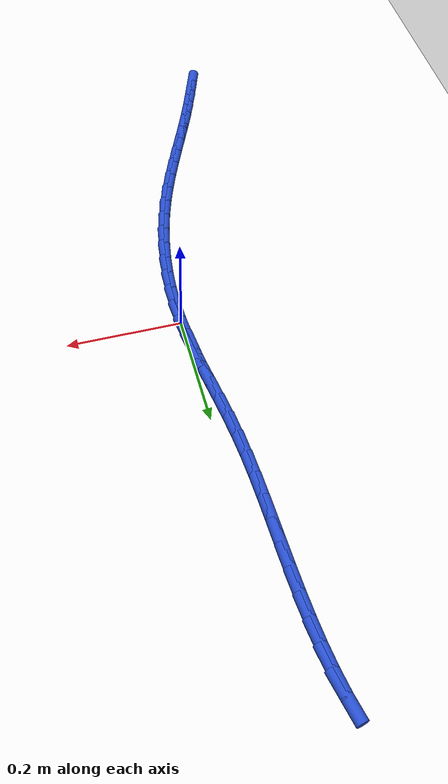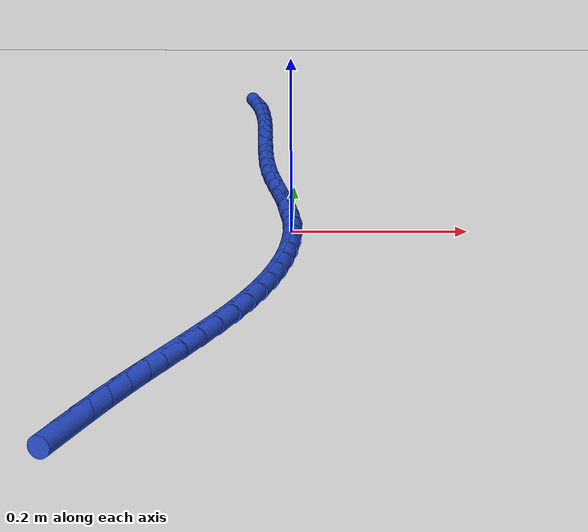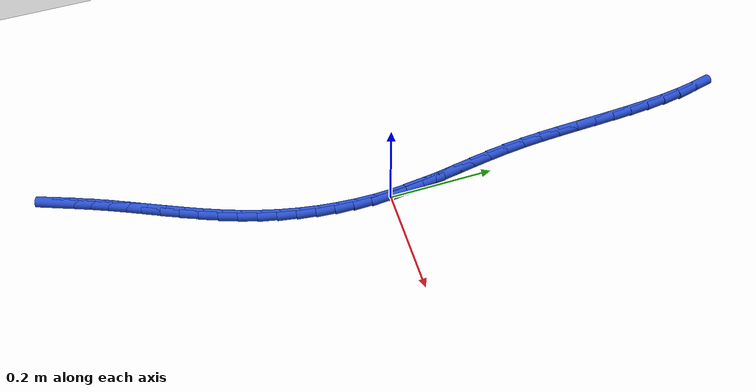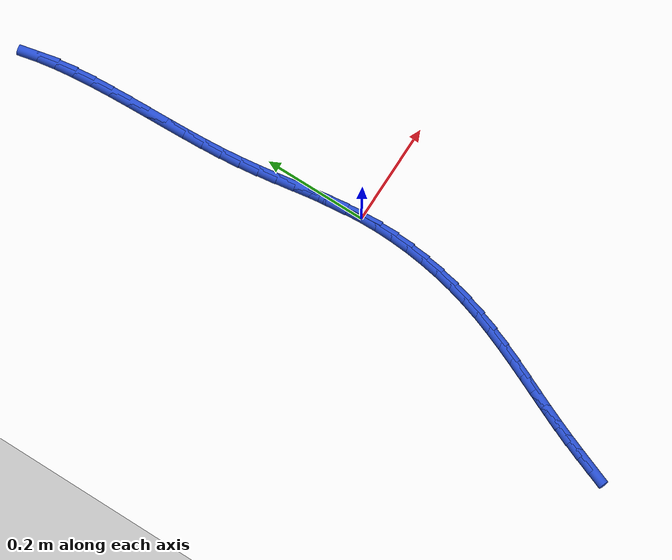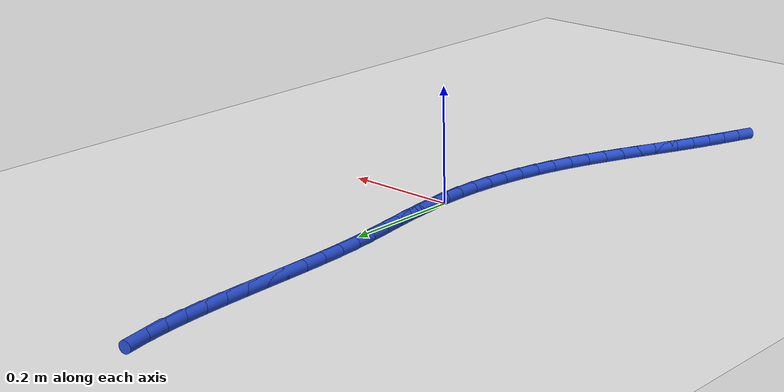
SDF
<sdf version="1.6">
 <world name="default">
  <model name="ground_plane">
   <static>1</static>
   <link name="link">
    <collision name="collision">
     <geometry><plane><normal>0 0 1</normal><size>100 100</size></plane></geometry>
     <surface><friction><ode><mu>100</mu><mu2>50</mu2></ode></friction></surface>
    </collision>
    <visual name="visual">
     <cast_shadows>0</cast_shadows>
     <geometry><plane><normal>0 0 1</normal><size>100 100</size></plane></geometry>
     <material>
      <script><uri>file://media/materials/scripts/gazebo.material</uri><name>Gazebo/WhiteGlow</name></script>
     </material>
    </visual>
   </link>
  </model>
  <model name="line">
   <link name="link_0">
    <pose>1.734723475976807e-18 6.938893903907228e-17 0.01 0 1.57 -1.49729034495382</pose>
    <collision name="collision">
     <geometry><cylinder><radius>0.01</radius><length>0.08</length></cylinder></geometry>
    </collision>
    <visual name="visual">
     <material>
      <script><name>Gazebo/Blue</name><uri>file://media/materials/scripts/gazebo.material</uri></script>
     </material>
     <geometry><cylinder><radius>0.01</radius><length>0.08</length></cylinder></geometry>
    </visual>
   </link>
   <link name="link_1">
    <pose>-0.0025253900705594695 0.03429435308270315 0.01 0 1.57 -1.4575326165541347</pose>
    <collision name="collision">
     <geometry><cylinder><radius>0.01</radius><length>0.08</length></cylinder></geometry>
    </collision>
    <visual name="visual">
     <material>
      <script><name>Gazebo/Blue</name><uri>file://media/materials/scripts/gazebo.material</uri></script>
     </material>
     <geometry><cylinder><radius>0.01</radius><length>0.08</length></cylinder></geometry>
    </visual>
   </link>
   <link name="link_2">
    <pose>-0.006405219080018926 0.06840257522807053 0.01 0 1.57 -1.4298699594663284</pose>
    <collision name="collision">
     <geometry><cylinder><radius>0.01</radius><length>0.08</length></cylinder></geometry>
    </collision>
    <visual name="visual">
     <material>
      <script><name>Gazebo/Blue</name><uri>file://media/materials/scripts/gazebo.material</uri></script>
     </material>
     <geometry><cylinder><radius>0.01</radius><length>0.08</length></cylinder></geometry>
    </visual>
   </link>
   <link name="link_3">
    <pose>-0.011245025473110617 0.10251772397805181 0.01 0 1.57 -1.4145600217892622</pose>
    <collision name="collision">
     <geometry><cylinder><radius>0.01</radius><length>0.08</length></cylinder></geometry>
    </collision>
    <visual name="visual">
     <material>
      <script><name>Gazebo/Blue</name><uri>file://media/materials/scripts/gazebo.material</uri></script>
     </material>
     <geometry><cylinder><radius>0.01</radius><length>0.08</length></cylinder></geometry>
    </visual>
   </link>
   <link name="link_4">
    <pose>-0.016650347694566796 0.13683285687459656 0.01 0 1.57 -1.411493078600787</pose>
    <collision name="collision">
     <geometry><cylinder><radius>0.01</radius><length>0.08</length></cylinder></geometry>
    </collision>
    <visual name="visual">
     <material>
      <script><name>Gazebo/Blue</name><uri>file://media/materials/scripts/gazebo.material</uri></script>
     </material>
     <geometry><cylinder><radius>0.01</radius><length>0.08</length></cylinder></geometry>
    </visual>
   </link>
   <link name="link_5">
    <pose>-0.02222672418911971 0.1715410314596543 0.01 0 1.57 -1.4202766667233289</pose>
    <collision name="collision">
     <geometry><cylinder><radius>0.01</radius><length>0.08</length></cylinder></geometry>
    </collision>
    <visual name="visual">
     <material>
      <script><name>Gazebo/Blue</name><uri>file://media/materials/scripts/gazebo.material</uri></script>
     </material>
     <geometry><cylinder><radius>0.01</radius><length>0.08</length></cylinder></geometry>
    </visual>
   </link>
   <link name="link_6">
    <pose>-0.027579693401501622 0.2068353052751747 0.01 0 1.57 -1.4402796867522307</pose>
    <collision name="collision">
     <geometry><cylinder><radius>0.01</radius><length>0.08</length></cylinder></geometry>
    </collision>
    <visual name="visual">
     <material>
      <script><name>Gazebo/Blue</name><uri>file://media/materials/scripts/gazebo.material</uri></script>
     </material>
     <geometry><cylinder><radius>0.01</radius><length>0.08</length></cylinder></geometry>
    </visual>
   </link>
   <link name="link_7">
    <pose>-0.032314793776444764 0.24290873586310724 0.01 0 1.57 -1.4700609311337094</pose>
    <collision name="collision">
     <geometry><cylinder><radius>0.01</radius><length>0.08</length></cylinder></geometry>
    </collision>
    <visual name="visual">
     <material>
      <script><name>Gazebo/Blue</name><uri>file://media/materials/scripts/gazebo.material</uri></script>
     </material>
     <geometry><cylinder><radius>0.01</radius><length>0.08</length></cylinder></geometry>
    </visual>
   </link>
   <link name="link_8">
    <pose>-0.036057974832030236 0.2799415086800802 0.01 0 1.57 -1.4990809527026274</pose>
    <collision name="collision">
     <geometry><cylinder><radius>0.01</radius><length>0.08</length></cylinder></geometry>
    </collision>
    <visual name="visual">
     <material>
      <script><name>Gazebo/Blue</name><uri>file://media/materials/scripts/gazebo.material</uri></script>
     </material>
     <geometry><cylinder><radius>0.01</radius><length>0.08</length></cylinder></geometry>
    </visual>
   </link>
   <link name="link_9">
    <pose>-0.038784397628216255 0.3178935816285214 0.01 0 1.57 -1.51965966266096</pose>
    <collision name="collision">
     <geometry><cylinder><radius>0.01</radius><length>0.08</length></cylinder></geometry>
    </collision>
    <visual name="visual">
     <material>
      <script><name>Gazebo/Blue</name><uri>file://media/materials/scripts/gazebo.material</uri></script>
     </material>
     <geometry><cylinder><radius>0.01</radius><length>0.08</length></cylinder></geometry>
    </visual>
   </link>
   <link name="link_10">
    <pose>-0.04076237299719372 0.3565400399774797 0.01 0 1.57 -1.5322850215961288</pose>
    <collision name="collision">
     <geometry><cylinder><radius>0.01</radius><length>0.08</length></cylinder></geometry>
    </collision>
    <visual name="visual">
     <material>
      <script><name>Gazebo/Blue</name><uri>file://media/materials/scripts/gazebo.material</uri></script>
     </material>
     <geometry><cylinder><radius>0.01</radius><length>0.08</length></cylinder></geometry>
    </visual>
   </link>
   <link name="link_11">
    <pose>-0.04226930274641852 0.39565023584286313 0.01 0 1.57 -1.5374285366922666</pose>
    <collision name="collision">
     <geometry><cylinder><radius>0.01</radius><length>0.08</length></cylinder></geometry>
    </collision>
    <visual name="visual">
     <material>
      <script><name>Gazebo/Blue</name><uri>file://media/materials/scripts/gazebo.material</uri></script>
     </material>
     <geometry><cylinder><radius>0.01</radius><length>0.08</length></cylinder></geometry>
    </visual>
   </link>
   <link name="link_12">
    <pose>-0.04358258868334654 0.43499352134058056 0.01 0 1.57 -1.5353043592740523</pose>
    <collision name="collision">
     <geometry><cylinder><radius>0.01</radius><length>0.08</length></cylinder></geometry>
    </collision>
    <visual name="visual">
     <material>
      <script><name>Gazebo/Blue</name><uri>file://media/materials/scripts/gazebo.material</uri></script>
     </material>
     <geometry><cylinder><radius>0.01</radius><length>0.08</length></cylinder></geometry>
    </visual>
   </link>
   <link name="link_13">
    <pose>-0.0449796326154337 0.4743392485865402 0.01 0 1.57 -1.5258798510124978</pose>
    <collision name="collision">
     <geometry><cylinder><radius>0.01</radius><length>0.08</length></cylinder></geometry>
    </collision>
    <visual name="visual">
     <material>
      <script><name>Gazebo/Blue</name><uri>file://media/materials/scripts/gazebo.material</uri></script>
     </material>
     <geometry><cylinder><radius>0.01</radius><length>0.08</length></cylinder></geometry>
    </visual>
   </link>
   <link name="link_14">
    <pose>-0.04673783635013589 0.5134567696966504 0.01 0 1.57 -1.5088774424410398</pose>
    <collision name="collision">
     <geometry><cylinder><radius>0.01</radius><length>0.08</length></cylinder></geometry>
    </collision>
    <visual name="visual">
     <material>
      <script><name>Gazebo/Blue</name><uri>file://media/materials/scripts/gazebo.material</uri></script>
     </material>
     <geometry><cylinder><radius>0.01</radius><length>0.08</length></cylinder></geometry>
    </visual>
   </link>
   <link name="link_15">
    <pose>-0.04913460169490902 0.5521154367868201 0.01 0 1.57 -1.483768834291413</pose>
    <collision name="collision">
     <geometry><cylinder><radius>0.01</radius><length>0.08</length></cylinder></geometry>
    </collision>
    <visual name="visual">
     <material>
      <script><name>Gazebo/Blue</name><uri>file://media/materials/scripts/gazebo.material</uri></script>
     </material>
     <geometry><cylinder><radius>0.01</radius><length>0.08</length></cylinder></geometry>
    </visual>
   </link>
   <link name="link_16">
    <pose>-0.052447330457208965 0.5900846019729572 0.01 0 1.57 -1.4497655786482748</pose>
    <collision name="collision">
     <geometry><cylinder><radius>0.01</radius><length>0.08</length></cylinder></geometry>
    </collision>
    <visual name="visual">
     <material>
      <script><name>Gazebo/Blue</name><uri>file://media/materials/scripts/gazebo.material</uri></script>
     </material>
     <geometry><cylinder><radius>0.01</radius><length>0.08</length></cylinder></geometry>
    </visual>
   </link>
   <link name="link_17">
    <pose>-0.05695342444449163 0.6271336173709703 0.01 0 1.57 -1.4058150263898792</pose>
    <collision name="collision">
     <geometry><cylinder><radius>0.01</radius><length>0.08</length></cylinder></geometry>
    </collision>
    <visual name="visual">
     <material>
      <script><name>Gazebo/Blue</name><uri>file://media/materials/scripts/gazebo.material</uri></script>
     </material>
     <geometry><cylinder><radius>0.01</radius><length>0.08</length></cylinder></geometry>
    </visual>
   </link>
   <link name="link_18">
    <pose>-0.06293028546421292 0.6630318350967679 0.01 0 1.57 -1.350619492227149</pose>
    <collision name="collision">
     <geometry><cylinder><radius>0.01</radius><length>0.08</length></cylinder></geometry>
    </collision>
    <visual name="visual">
     <material>
      <script><name>Gazebo/Blue</name><uri>file://media/materials/scripts/gazebo.material</uri></script>
     </material>
     <geometry><cylinder><radius>0.01</radius><length>0.08</length></cylinder></geometry>
    </visual>
   </link>
   <link name="link_222">
    <pose>-0.17132456348082273 -0.5945521666990831 0.01 0 1.57 1.2080223687928713</pose>
    <collision name="collision">
     <geometry><cylinder><radius>0.01</radius><length>0.08</length></cylinder></geometry>
    </collision>
    <visual name="visual">
     <material>
      <script><name>Gazebo/Blue</name><uri>file://media/materials/scripts/gazebo.material</uri></script>
     </material>
     <geometry><cylinder><radius>0.01</radius><length>0.08</length></cylinder></geometry>
    </visual>
   </link>
   <link name="link_223">
    <pose>-0.16000452731934262 -0.5647290971161137 0.01 0 1.57 1.197549558647723</pose>
    <collision name="collision">
     <geometry><cylinder><radius>0.01</radius><length>0.08</length></cylinder></geometry>
    </collision>
    <visual name="visual">
     <material>
      <script><name>Gazebo/Blue</name><uri>file://media/materials/scripts/gazebo.material</uri></script>
     </material>
     <geometry><cylinder><radius>0.01</radius><length>0.08</length></cylinder></geometry>
    </visual>
   </link>
   <link name="link_224">
    <pose>-0.14820902927098972 -0.5346080424882934 0.01 0 1.57 1.1818727285192872</pose>
    <collision name="collision">
     <geometry><cylinder><radius>0.01</radius><length>0.08</length></cylinder></geometry>
    </collision>
    <visual name="visual">
     <material>
      <script><name>Gazebo/Blue</name><uri>file://media/materials/scripts/gazebo.material</uri></script>
     </material>
     <geometry><cylinder><radius>0.01</radius><length>0.08</length></cylinder></geometry>
    </visual>
   </link>
   <link name="link_225">
    <pose>-0.13571403245049543 -0.5041173583062758 0.01 0 1.57 1.163067608400808</pose>
    <collision name="collision">
     <geometry><cylinder><radius>0.01</radius><length>0.08</length></cylinder></geometry>
    </collision>
    <visual name="visual">
     <material>
      <script><name>Gazebo/Blue</name><uri>file://media/materials/scripts/gazebo.material</uri></script>
     </material>
     <geometry><cylinder><radius>0.01</radius><length>0.08</length></cylinder></geometry>
    </visual>
   </link>
   <link name="link_226">
    <pose>-0.12235676909491684 -0.4731930087637767 0.01 0 1.57 1.150726832904098</pose>
    <collision name="collision">
     <geometry><cylinder><radius>0.01</radius><length>0.08</length></cylinder></geometry>
    </collision>
    <visual name="visual">
     <material>
      <script><name>Gazebo/Blue</name><uri>file://media/materials/scripts/gazebo.material</uri></script>
     </material>
     <geometry><cylinder><radius>0.01</radius><length>0.08</length></cylinder></geometry>
    </visual>
   </link>
   <link name="link_227">
    <pose>-0.10834232900330745 -0.4418166404284661 0.01 0 1.57 1.1477732031014458</pose>
    <collision name="collision">
     <geometry><cylinder><radius>0.01</radius><length>0.08</length></cylinder></geometry>
    </collision>
    <visual name="visual">
     <material>
      <script><name>Gazebo/Blue</name><uri>file://media/materials/scripts/gazebo.material</uri></script>
     </material>
     <geometry><cylinder><radius>0.01</radius><length>0.08</length></cylinder></geometry>
    </visual>
   </link>
   <link name="link_228">
    <pose>-0.09401245582937648 -0.40998687022049757 0.01 0 1.57 1.1537454216253873</pose>
    <collision name="collision">
     <geometry><cylinder><radius>0.01</radius><length>0.08</length></cylinder></geometry>
    </collision>
    <visual name="visual">
     <material>
      <script><name>Gazebo/Blue</name><uri>file://media/materials/scripts/gazebo.material</uri></script>
     </material>
     <geometry><cylinder><radius>0.01</radius><length>0.08</length></cylinder></geometry>
    </visual>
   </link>
   <link name="link_229">
    <pose>-0.07970912014795604 -0.3777023432402136 0.01 0 1.57 1.1684069349219603</pose>
    <collision name="collision">
     <geometry><cylinder><radius>0.01</radius><length>0.08</length></cylinder></geometry>
    </collision>
    <visual name="visual">
     <material>
      <script><name>Gazebo/Blue</name><uri>file://media/materials/scripts/gazebo.material</uri></script>
     </material>
     <geometry><cylinder><radius>0.01</radius><length>0.08</length></cylinder></geometry>
    </visual>
   </link>
   <link name="link_230">
    <pose>-0.06577429253387777 -0.34496170458795583 0.01 0 1.57 1.191716194272172</pose>
    <collision name="collision">
     <geometry><cylinder><radius>0.01</radius><length>0.08</length></cylinder></geometry>
    </collision>
    <visual name="visual">
     <material>
      <script><name>Gazebo/Blue</name><uri>file://media/materials/scripts/gazebo.material</uri></script>
     </material>
     <geometry><cylinder><radius>0.01</radius><length>0.08</length></cylinder></geometry>
    </visual>
   </link>
   <link name="link_231">
    <pose>-0.05254994356197453 -0.31176359936406856 0.01 0 1.57 1.2237841784455197</pose>
    <collision name="collision">
     <geometry><cylinder><radius>0.01</radius><length>0.08</length></cylinder></geometry>
    </collision>
    <visual name="visual">
     <material>
      <script><name>Gazebo/Blue</name><uri>file://media/materials/scripts/gazebo.material</uri></script>
     </material>
     <geometry><cylinder><radius>0.01</radius><length>0.08</length></cylinder></geometry>
    </visual>
   </link>
   <link name="link_232">
    <pose>-0.040378043807078 -0.2781066726688932 0.01 0 1.57 1.264691402994439</pose>
    <collision name="collision">
     <geometry><cylinder><radius>0.01</radius><length>0.08</length></cylinder></geometry>
    </collision>
    <visual name="visual">
     <material>
      <script><name>Gazebo/Blue</name><uri>file://media/materials/scripts/gazebo.material</uri></script>
     </material>
     <geometry><cylinder><radius>0.01</radius><length>0.08</length></cylinder></geometry>
    </visual>
   </link>
   <link name="link_233">
    <pose>-0.029596228972526676 -0.24399111730789694 0.01 0 1.57 1.3105332046922888</pose>
    <collision name="collision">
     <geometry><cylinder><radius>0.01</radius><length>0.08</length></cylinder></geometry>
    </collision>
    <visual name="visual">
     <material>
      <script><name>Gazebo/Blue</name><uri>file://media/materials/scripts/gazebo.material</uri></script>
     </material>
     <geometry><cylinder><radius>0.01</radius><length>0.08</length></cylinder></geometry>
    </visual>
   </link>
   <link name="link_234">
    <pose>-0.020402351454153565 -0.2094670337577805 0.01 0 1.57 1.3566157381676867</pose>
    <collision name="collision">
     <geometry><cylinder><radius>0.01</radius><length>0.08</length></cylinder></geometry>
    </collision>
    <visual name="visual">
     <material>
      <script><name>Gazebo/Blue</name><uri>file://media/materials/scripts/gazebo.material</uri></script>
     </material>
     <geometry><cylinder><radius>0.01</radius><length>0.08</length></cylinder></geometry>
    </visual>
   </link>
   <link name="link_235">
    <pose>-0.012827748272490783 -0.17464397447670293 0.01 0 1.57 1.4029005596950872</pose>
    <collision name="collision">
     <geometry><cylinder><radius>0.01</radius><length>0.08</length></cylinder></geometry>
    </collision>
    <visual name="visual">
     <material>
      <script><name>Gazebo/Blue</name><uri>file://media/materials/scripts/gazebo.material</uri></script>
     </material>
     <geometry><cylinder><radius>0.01</radius><length>0.08</length></cylinder></geometry>
    </visual>
   </link>
   <link name="link_236">
    <pose>-0.006894023787114563 -0.13963496683303847 0.01 0 1.57 1.4496421350566269</pose>
    <collision name="collision">
     <geometry><cylinder><radius>0.01</radius><length>0.08</length></cylinder></geometry>
    </collision>
    <visual name="visual">
     <material>
      <script><name>Gazebo/Blue</name><uri>file://media/materials/scripts/gazebo.material</uri></script>
     </material>
     <geometry><cylinder><radius>0.01</radius><length>0.08</length></cylinder></geometry>
    </visual>
   </link>
   <link name="link_237">
    <pose>-0.002622782357601144 -0.10455303819516171 0.01 0 1.57 1.497099573687255</pose>
    <collision name="collision">
     <geometry><cylinder><radius>0.01</radius><length>0.08</length></cylinder></geometry>
    </collision>
    <visual name="visual">
     <material>
      <script><name>Gazebo/Blue</name><uri>file://media/materials/scripts/gazebo.material</uri></script>
     </material>
     <geometry><cylinder><radius>0.01</radius><length>0.08</length></cylinder></geometry>
    </visual>
   </link>
   <link name="link_238">
    <pose>-3.562834352670123e-05 -0.06951121593144596 0.01 0 1.57 1.5455367141040985</pose>
    <collision name="collision">
     <geometry><cylinder><radius>0.01</radius><length>0.08</length></cylinder></geometry>
    </collision>
    <visual name="visual">
     <material>
      <script><name>Gazebo/Blue</name><uri>file://media/materials/scripts/gazebo.material</uri></script>
     </material>
     <geometry><cylinder><radius>0.01</radius><length>0.08</length></cylinder></geometry>
    </visual>
   </link>
   <link name="link_239">
    <pose>0.0008458338955323894 -0.034622527410267584 0.01 0 1.57 -1.5463710249687401</pose>
    <collision name="collision">
     <geometry><cylinder><radius>0.01</radius><length>0.08</length></cylinder></geometry>
    </collision>
    <visual name="visual">
     <material>
      <script><name>Gazebo/Blue</name><uri>file://media/materials/scripts/gazebo.material</uri></script>
     </material>
     <geometry><cylinder><radius>0.01</radius><length>0.08</length></cylinder></geometry>
    </visual>
   </link>
   <link name="link_240">
    <pose>-6.938893903907228e-18 -6.245004513516506e-17 0.01 0 1.57 -1.4951674446537468</pose>
    <collision name="collision">
     <geometry><cylinder><radius>0.01</radius><length>0.08</length></cylinder></geometry>
    </collision>
    <visual name="visual">
     <material>
      <script><name>Gazebo/Blue</name><uri>file://media/materials/scripts/gazebo.material</uri></script>
     </material>
     <geometry><cylinder><radius>0.01</radius><length>0.08</length></cylinder></geometry>
    </visual>
   </link>
   <link name="link_241">
    <pose>-0.0025947343897001277 0.03424333893098224 0.01 0 1.57 -1.4421742267542483</pose>
    <collision name="collision">
     <geometry><cylinder><radius>0.01</radius><length>0.08</length></cylinder></geometry>
    </collision>
    <visual name="visual">
     <material>
      <script><name>Gazebo/Blue</name><uri>file://media/materials/scripts/gazebo.material</uri></script>
     </material>
     <geometry><cylinder><radius>0.01</radius><length>0.08</length></cylinder></geometry>
    </visual>
   </link>
   <link name="link_242">
    <pose>-0.006959973633144198 0.06799446201430487 0.01 0 1.57 -1.468790710176064</pose>
    <collision name="collision">
     <geometry><cylinder><radius>0.01</radius><length>0.08</length></cylinder></geometry>
    </collision>
    <visual name="visual">
     <material>
      <script><name>Gazebo/Blue</name><uri>file://media/materials/scripts/gazebo.material</uri></script>
     </material>
     <geometry><cylinder><radius>0.01</radius><length>0.08</length></cylinder></geometry>
    </visual>
   </link>
  </model>
 </world>
</sdf>
